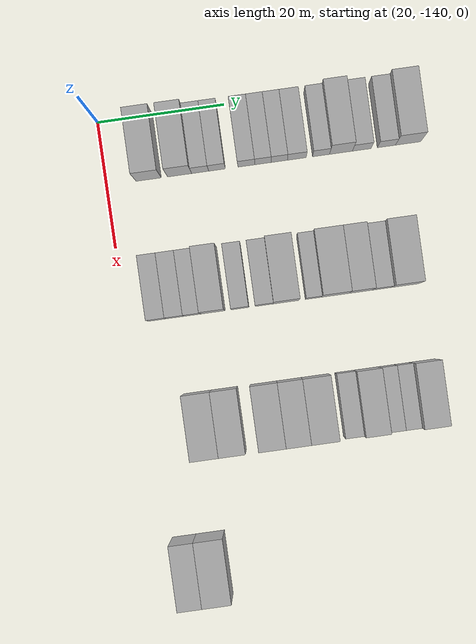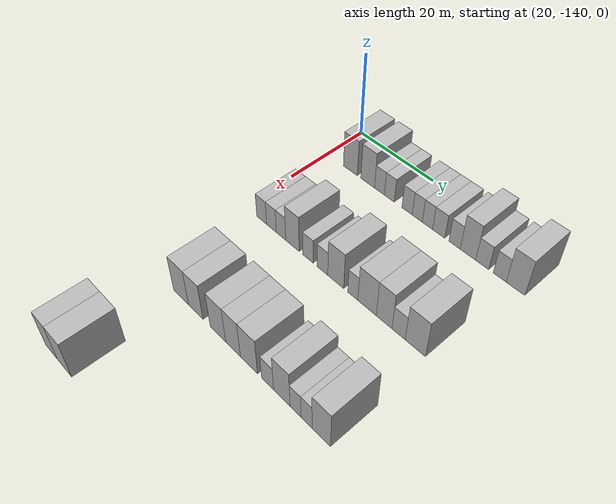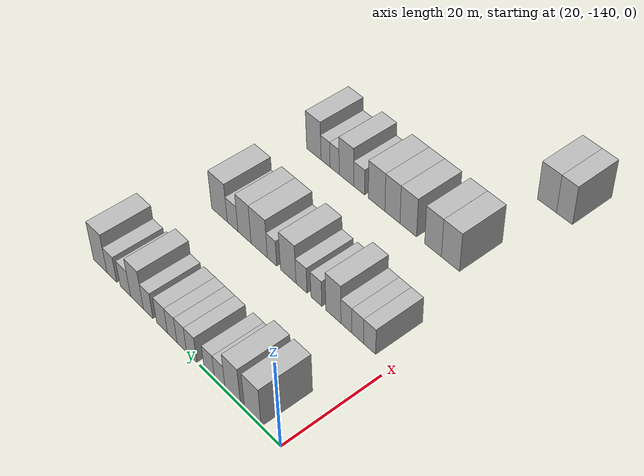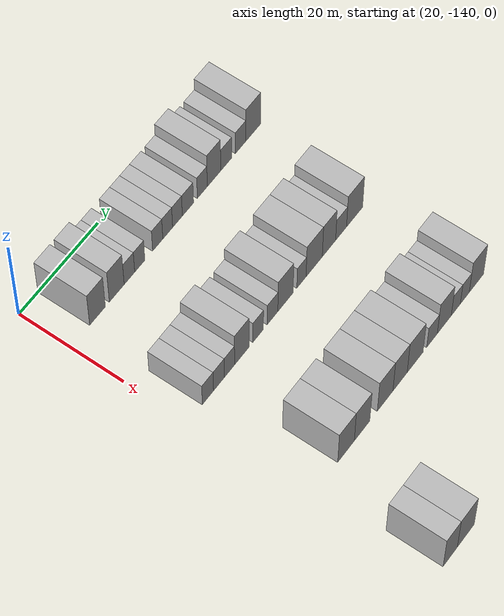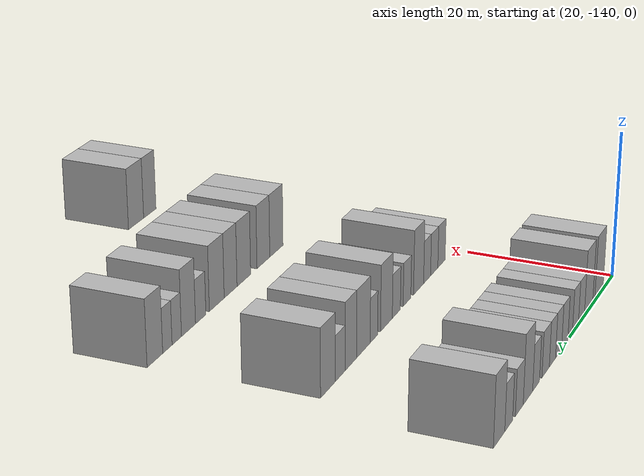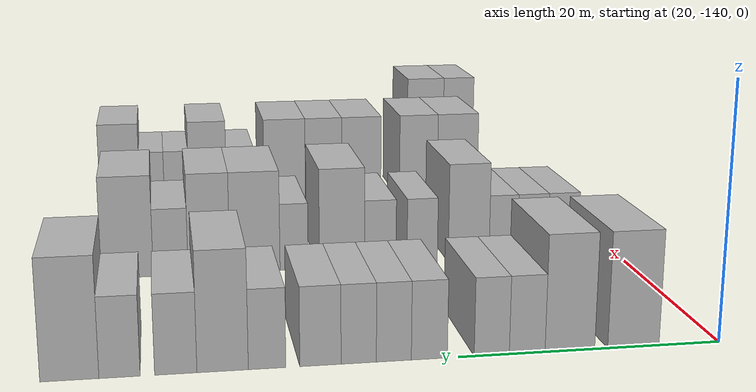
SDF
<sdf version="1.6">
 <world name="default">
  <model name="building_61">
   <static>1</static>
   <pose>25.0000 -133.2945 0 0.000000 0.000000 0.000000</pose>
   <link name="link">
    <pose>0 0 4.50 0 0 0</pose>
    <collision name="collision"><geometry><box><size>10.0000 3.9825 9.0000</size></box></geometry></collision>
    <visual name="visual">
     <cast_shadows>0</cast_shadows>
     <geometry><box><size>10.0000 3.9825 9.0000</size></box></geometry>
     <material>
      <script>
       <uri>model://HANNAS_wall/materials/scripts</uri>
       <uri>model://HANNAS_wall/materials/textures</uri>
       <name>vrc/HANNAS_wall</name>
      </script>
     </material>
    </visual>
   </link>
  </model>
  <model name="building_62">
   <static>1</static>
   <pose>25.0000 -128.4041 0 0.000000 0.000000 0.000000</pose>
   <link name="link">
    <pose>0 0 4.50 0 0 0</pose>
    <collision name="collision"><geometry><box><size>10.0000 3.7982 9.0000</size></box></geometry></collision>
    <visual name="visual">
     <cast_shadows>0</cast_shadows>
     <geometry><box><size>10.0000 3.7982 9.0000</size></box></geometry>
     <material>
      <script>
       <uri>model://HANNAS_wall/materials/scripts</uri>
       <uri>model://HANNAS_wall/materials/textures</uri>
       <name>vrc/HANNAS_wall</name>
      </script>
     </material>
    </visual>
   </link>
  </model>
  <model name="building_63">
   <static>1</static>
   <pose>25.0000 -125.1528 0 0.000000 0.000000 0.000000</pose>
   <link name="link">
    <pose>0 0 3.00 0 0 0</pose>
    <collision name="collision"><geometry><box><size>10.0000 2.7044 6.0000</size></box></geometry></collision>
    <visual name="visual">
     <cast_shadows>0</cast_shadows>
     <geometry><box><size>10.0000 2.7044 6.0000</size></box></geometry>
     <material>
      <script>
       <uri>model://HANNAS_wall/materials/scripts</uri>
       <uri>model://HANNAS_wall/materials/textures</uri>
       <name>vrc/HANNAS_wall</name>
      </script>
     </material>
    </visual>
   </link>
  </model>
  <model name="building_64">
   <static>1</static>
   <pose>25.0000 -122.4836 0 0.000000 0.000000 0.000000</pose>
   <link name="link">
    <pose>0 0 3.00 0 0 0</pose>
    <collision name="collision"><geometry><box><size>10.0000 2.6340 6.0000</size></box></geometry></collision>
    <visual name="visual">
     <cast_shadows>0</cast_shadows>
     <geometry><box><size>10.0000 2.6340 6.0000</size></box></geometry>
     <material>
      <script>
       <uri>model://HANNAS_wall/materials/scripts</uri>
       <uri>model://HANNAS_wall/materials/textures</uri>
       <name>vrc/HANNAS_wall</name>
      </script>
     </material>
    </visual>
   </link>
  </model>
  <model name="building_65">
   <static>1</static>
   <pose>25.0000 -117.8355 0 0.000000 0.000000 0.000000</pose>
   <link name="link">
    <pose>0 0 3.00 0 0 0</pose>
    <collision name="collision"><geometry><box><size>10.0000 2.6623 6.0000</size></box></geometry></collision>
    <visual name="visual">
     <cast_shadows>0</cast_shadows>
     <geometry><box><size>10.0000 2.6623 6.0000</size></box></geometry>
     <material>
      <script>
       <uri>model://HANNAS_wall/materials/scripts</uri>
       <uri>model://HANNAS_wall/materials/textures</uri>
       <name>vrc/HANNAS_wall</name>
      </script>
     </material>
    </visual>
   </link>
  </model>
  <model name="building_66">
   <static>1</static>
   <pose>25.0000 -115.2223 0 0.000000 0.000000 0.000000</pose>
   <link name="link">
    <pose>0 0 3.00 0 0 0</pose>
    <collision name="collision"><geometry><box><size>10.0000 2.5640 6.0000</size></box></geometry></collision>
    <visual name="visual">
     <cast_shadows>0</cast_shadows>
     <geometry><box><size>10.0000 2.5640 6.0000</size></box></geometry>
     <material>
      <script>
       <uri>model://HANNAS_wall/materials/scripts</uri>
       <uri>model://HANNAS_wall/materials/textures</uri>
       <name>vrc/HANNAS_wall</name>
      </script>
     </material>
    </visual>
   </link>
  </model>
  <model name="building_67">
   <static>1</static>
   <pose>25.0000 -112.6563 0 0.000000 0.000000 0.000000</pose>
   <link name="link">
    <pose>0 0 3.00 0 0 0</pose>
    <collision name="collision"><geometry><box><size>10.0000 2.5680 6.0000</size></box></geometry></collision>
    <visual name="visual">
     <cast_shadows>0</cast_shadows>
     <geometry><box><size>10.0000 2.5680 6.0000</size></box></geometry>
     <material>
      <script>
       <uri>model://HANNAS_wall/materials/scripts</uri>
       <uri>model://HANNAS_wall/materials/textures</uri>
       <name>vrc/HANNAS_wall</name>
      </script>
     </material>
    </visual>
   </link>
  </model>
  <model name="building_68">
   <static>1</static>
   <pose>25.0000 -109.8868 0 0.000000 0.000000 0.000000</pose>
   <link name="link">
    <pose>0 0 3.00 0 0 0</pose>
    <collision name="collision"><geometry><box><size>10.0000 2.9711 6.0000</size></box></geometry></collision>
    <visual name="visual">
     <cast_shadows>0</cast_shadows>
     <geometry><box><size>10.0000 2.9711 6.0000</size></box></geometry>
     <material>
      <script>
       <uri>model://HANNAS_wall/materials/scripts</uri>
       <uri>model://HANNAS_wall/materials/textures</uri>
       <name>vrc/HANNAS_wall</name>
      </script>
     </material>
    </visual>
   </link>
  </model>
  <model name="building_69">
   <static>1</static>
   <pose>25.0000 -106.0646 0 0.000000 0.000000 0.000000</pose>
   <link name="link">
    <pose>0 0 3.00 0 0 0</pose>
    <collision name="collision"><geometry><box><size>10.0000 2.6733 6.0000</size></box></geometry></collision>
    <visual name="visual">
     <cast_shadows>0</cast_shadows>
     <geometry><box><size>10.0000 2.6733 6.0000</size></box></geometry>
     <material>
      <script>
       <uri>model://HANNAS_wall/materials/scripts</uri>
       <uri>model://HANNAS_wall/materials/textures</uri>
       <name>vrc/HANNAS_wall</name>
      </script>
     </material>
    </visual>
   </link>
  </model>
  <model name="building_70">
   <static>1</static>
   <pose>25.0000 -102.9174 0 0.000000 0.000000 0.000000</pose>
   <link name="link">
    <pose>0 0 4.50 0 0 0</pose>
    <collision name="collision"><geometry><box><size>10.0000 3.6209 9.0000</size></box></geometry></collision>
    <visual name="visual">
     <cast_shadows>0</cast_shadows>
     <geometry><box><size>10.0000 3.6209 9.0000</size></box></geometry>
     <material>
      <script>
       <uri>model://HANNAS_wall/materials/scripts</uri>
       <uri>model://HANNAS_wall/materials/textures</uri>
       <name>vrc/HANNAS_wall</name>
      </script>
     </material>
    </visual>
   </link>
  </model>
  <model name="building_71">
   <static>1</static>
   <pose>25.0000 -99.6323 0 0.000000 0.000000 0.000000</pose>
   <link name="link">
    <pose>0 0 3.00 0 0 0</pose>
    <collision name="collision"><geometry><box><size>10.0000 2.9495 6.0000</size></box></geometry></collision>
    <visual name="visual">
     <cast_shadows>0</cast_shadows>
     <geometry><box><size>10.0000 2.9495 6.0000</size></box></geometry>
     <material>
      <script>
       <uri>model://HANNAS_wall/materials/scripts</uri>
       <uri>model://HANNAS_wall/materials/textures</uri>
       <name>vrc/HANNAS_wall</name>
      </script>
     </material>
    </visual>
   </link>
  </model>
  <model name="building_72">
   <static>1</static>
   <pose>25.0000 -95.7354 0 0.000000 0.000000 0.000000</pose>
   <link name="link">
    <pose>0 0 3.00 0 0 0</pose>
    <collision name="collision"><geometry><box><size>10.0000 2.8443 6.0000</size></box></geometry></collision>
    <visual name="visual">
     <cast_shadows>0</cast_shadows>
     <geometry><box><size>10.0000 2.8443 6.0000</size></box></geometry>
     <material>
      <script>
       <uri>model://HANNAS_wall/materials/scripts</uri>
       <uri>model://HANNAS_wall/materials/textures</uri>
       <name>vrc/HANNAS_wall</name>
      </script>
     </material>
    </visual>
   </link>
  </model>
  <model name="building_73">
   <static>1</static>
   <pose>25.0000 -92.3011 0 0.000000 0.000000 0.000000</pose>
   <link name="link">
    <pose>0 0 4.50 0 0 0</pose>
    <collision name="collision"><geometry><box><size>10.0000 4.0243 9.0000</size></box></geometry></collision>
    <visual name="visual">
     <cast_shadows>0</cast_shadows>
     <geometry><box><size>10.0000 4.0243 9.0000</size></box></geometry>
     <material>
      <script>
       <uri>model://HANNAS_wall/materials/scripts</uri>
       <uri>model://HANNAS_wall/materials/textures</uri>
       <name>vrc/HANNAS_wall</name>
      </script>
     </material>
    </visual>
   </link>
  </model>
  <model name="building_256">
   <static>1</static>
   <pose>47.0000 -134.8797 0 0.000000 0.000000 0.000000</pose>
   <link name="link">
    <pose>0 0 3.00 0 0 0</pose>
    <collision name="collision"><geometry><box><size>10.0000 2.8707 6.0000</size></box></geometry></collision>
    <visual name="visual">
     <cast_shadows>0</cast_shadows>
     <geometry><box><size>10.0000 2.8707 6.0000</size></box></geometry>
     <material>
      <script>
       <uri>model://HANNAS_wall/materials/scripts</uri>
       <uri>model://HANNAS_wall/materials/textures</uri>
       <name>vrc/HANNAS_wall</name>
      </script>
     </material>
    </visual>
   </link>
  </model>
  <model name="building_257">
   <static>1</static>
   <pose>47.0000 -132.0380 0 0.000000 0.000000 0.000000</pose>
   <link name="link">
    <pose>0 0 3.00 0 0 0</pose>
    <collision name="collision"><geometry><box><size>10.0000 2.8127 6.0000</size></box></geometry></collision>
    <visual name="visual">
     <cast_shadows>0</cast_shadows>
     <geometry><box><size>10.0000 2.8127 6.0000</size></box></geometry>
     <material>
      <script>
       <uri>model://HANNAS_wall/materials/scripts</uri>
       <uri>model://HANNAS_wall/materials/textures</uri>
       <name>vrc/HANNAS_wall</name>
      </script>
     </material>
    </visual>
   </link>
  </model>
  <model name="building_258">
   <static>1</static>
   <pose>47.0000 -129.3125 0 0.000000 0.000000 0.000000</pose>
   <link name="link">
    <pose>0 0 3.00 0 0 0</pose>
    <collision name="collision"><geometry><box><size>10.0000 2.6383 6.0000</size></box></geometry></collision>
    <visual name="visual">
     <cast_shadows>0</cast_shadows>
     <geometry><box><size>10.0000 2.6383 6.0000</size></box></geometry>
     <material>
      <script>
       <uri>model://HANNAS_wall/materials/scripts</uri>
       <uri>model://HANNAS_wall/materials/textures</uri>
       <name>vrc/HANNAS_wall</name>
      </script>
     </material>
    </visual>
   </link>
  </model>
  <model name="building_259">
   <static>1</static>
   <pose>47.0000 -126.1210 0 0.000000 0.000000 0.000000</pose>
   <link name="link">
    <pose>0 0 4.50 0 0 0</pose>
    <collision name="collision"><geometry><box><size>10.0000 3.7447 9.0000</size></box></geometry></collision>
    <visual name="visual">
     <cast_shadows>0</cast_shadows>
     <geometry><box><size>10.0000 3.7447 9.0000</size></box></geometry>
     <material>
      <script>
       <uri>model://HANNAS_wall/materials/scripts</uri>
       <uri>model://HANNAS_wall/materials/textures</uri>
       <name>vrc/HANNAS_wall</name>
      </script>
     </material>
    </visual>
   </link>
  </model>
  <model name="building_260">
   <static>1</static>
   <pose>47.0000 -121.8693 0 0.000000 0.000000 0.000000</pose>
   <link name="link">
    <pose>0 0 3.00 0 0 0</pose>
    <collision name="collision"><geometry><box><size>10.0000 2.7587 6.0000</size></box></geometry></collision>
    <visual name="visual">
     <cast_shadows>0</cast_shadows>
     <geometry><box><size>10.0000 2.7587 6.0000</size></box></geometry>
     <material>
      <script>
       <uri>model://HANNAS_wall/materials/scripts</uri>
       <uri>model://HANNAS_wall/materials/textures</uri>
       <name>vrc/HANNAS_wall</name>
      </script>
     </material>
    </visual>
   </link>
  </model>
  <model name="building_261">
   <static>1</static>
   <pose>47.0000 -118.0780 0 0.000000 0.000000 0.000000</pose>
   <link name="link">
    <pose>0 0 3.00 0 0 0</pose>
    <collision name="collision"><geometry><box><size>10.0000 2.8239 6.0000</size></box></geometry></collision>
    <visual name="visual">
     <cast_shadows>0</cast_shadows>
     <geometry><box><size>10.0000 2.8239 6.0000</size></box></geometry>
     <material>
      <script>
       <uri>model://HANNAS_wall/materials/scripts</uri>
       <uri>model://HANNAS_wall/materials/textures</uri>
       <name>vrc/HANNAS_wall</name>
      </script>
     </material>
    </visual>
   </link>
  </model>
  <model name="building_262">
   <static>1</static>
   <pose>47.0000 -114.6399 0 0.000000 0.000000 0.000000</pose>
   <link name="link">
    <pose>0 0 4.50 0 0 0</pose>
    <collision name="collision"><geometry><box><size>10.0000 4.0524 9.0000</size></box></geometry></collision>
    <visual name="visual">
     <cast_shadows>0</cast_shadows>
     <geometry><box><size>10.0000 4.0524 9.0000</size></box></geometry>
     <material>
      <script>
       <uri>model://HANNAS_wall/materials/scripts</uri>
       <uri>model://HANNAS_wall/materials/textures</uri>
       <name>vrc/HANNAS_wall</name>
      </script>
     </material>
    </visual>
   </link>
  </model>
  <model name="building_263">
   <static>1</static>
   <pose>47.0000 -110.3734 0 0.000000 0.000000 0.000000</pose>
   <link name="link">
    <pose>0 0 3.00 0 0 0</pose>
    <collision name="collision"><geometry><box><size>10.0000 2.4806 6.0000</size></box></geometry></collision>
    <visual name="visual">
     <cast_shadows>0</cast_shadows>
     <geometry><box><size>10.0000 2.4806 6.0000</size></box></geometry>
     <material>
      <script>
       <uri>model://HANNAS_wall/materials/scripts</uri>
       <uri>model://HANNAS_wall/materials/textures</uri>
       <name>vrc/HANNAS_wall</name>
      </script>
     </material>
    </visual>
   </link>
  </model>
  <model name="building_264">
   <static>1</static>
   <pose>47.0000 -106.9360 0 0.000000 0.000000 0.000000</pose>
   <link name="link">
    <pose>0 0 4.50 0 0 0</pose>
    <collision name="collision"><geometry><box><size>10.0000 4.3941 9.0000</size></box></geometry></collision>
    <visual name="visual">
     <cast_shadows>0</cast_shadows>
     <geometry><box><size>10.0000 4.3941 9.0000</size></box></geometry>
     <material>
      <script>
       <uri>model://HANNAS_wall/materials/scripts</uri>
       <uri>model://HANNAS_wall/materials/textures</uri>
       <name>vrc/HANNAS_wall</name>
      </script>
     </material>
    </visual>
   </link>
  </model>
  <model name="building_265">
   <static>1</static>
   <pose>47.0000 -102.9288 0 0.000000 0.000000 0.000000</pose>
   <link name="link">
    <pose>0 0 4.50 0 0 0</pose>
    <collision name="collision"><geometry><box><size>10.0000 3.6204 9.0000</size></box></geometry></collision>
    <visual name="visual">
     <cast_shadows>0</cast_shadows>
     <geometry><box><size>10.0000 3.6204 9.0000</size></box></geometry>
     <material>
      <script>
       <uri>model://HANNAS_wall/materials/scripts</uri>
       <uri>model://HANNAS_wall/materials/textures</uri>
       <name>vrc/HANNAS_wall</name>
      </script>
     </material>
    </visual>
   </link>
  </model>
  <model name="building_266">
   <static>1</static>
   <pose>47.0000 -99.6198 0 0.000000 0.000000 0.000000</pose>
   <link name="link">
    <pose>0 0 3.00 0 0 0</pose>
    <collision name="collision"><geometry><box><size>10.0000 2.9974 6.0000</size></box></geometry></collision>
    <visual name="visual">
     <cast_shadows>0</cast_shadows>
     <geometry><box><size>10.0000 2.9974 6.0000</size></box></geometry>
     <material>
      <script>
       <uri>model://HANNAS_wall/materials/scripts</uri>
       <uri>model://HANNAS_wall/materials/textures</uri>
       <name>vrc/HANNAS_wall</name>
      </script>
     </material>
    </visual>
   </link>
  </model>
  <model name="building_267">
   <static>1</static>
   <pose>47.0000 -95.9045 0 0.000000 0.000000 0.000000</pose>
   <link name="link">
    <pose>0 0 4.50 0 0 0</pose>
    <collision name="collision"><geometry><box><size>10.0000 4.4332 9.0000</size></box></geometry></collision>
    <visual name="visual">
     <cast_shadows>0</cast_shadows>
     <geometry><box><size>10.0000 4.4332 9.0000</size></box></geometry>
     <material>
      <script>
       <uri>model://HANNAS_wall/materials/scripts</uri>
       <uri>model://HANNAS_wall/materials/textures</uri>
       <name>vrc/HANNAS_wall</name>
      </script>
     </material>
    </visual>
   </link>
  </model>
  <model name="building_443">
   <static>1</static>
   <pose>69.0000 -130.2370 0 0.000000 0.000000 0.000000</pose>
   <link name="link">
    <pose>0 0 4.50 0 0 0</pose>
    <collision name="collision"><geometry><box><size>10.0000 4.3600 9.0000</size></box></geometry></collision>
    <visual name="visual">
     <cast_shadows>0</cast_shadows>
     <geometry><box><size>10.0000 4.3600 9.0000</size></box></geometry>
     <material>
      <script>
       <uri>model://HANNAS_wall/materials/scripts</uri>
       <uri>model://HANNAS_wall/materials/textures</uri>
       <name>vrc/HANNAS_wall</name>
      </script>
     </material>
    </visual>
   </link>
  </model>
  <model name="building_444">
   <static>1</static>
   <pose>69.0000 -126.0139 0 0.000000 0.000000 0.000000</pose>
   <link name="link">
    <pose>0 0 4.50 0 0 0</pose>
    <collision name="collision"><geometry><box><size>10.0000 4.0861 9.0000</size></box></geometry></collision>
    <visual name="visual">
     <cast_shadows>0</cast_shadows>
     <geometry><box><size>10.0000 4.0861 9.0000</size></box></geometry>
     <material>
      <script>
       <uri>model://HANNAS_wall/materials/scripts</uri>
       <uri>model://HANNAS_wall/materials/textures</uri>
       <name>vrc/HANNAS_wall</name>
      </script>
     </material>
    </visual>
   </link>
  </model>
  <model name="building_445">
   <static>1</static>
   <pose>69.0000 -119.8840 0 0.000000 0.000000 0.000000</pose>
   <link name="link">
    <pose>0 0 4.50 0 0 0</pose>
    <collision name="collision"><geometry><box><size>10.0000 4.1737 9.0000</size></box></geometry></collision>
    <visual name="visual">
     <cast_shadows>0</cast_shadows>
     <geometry><box><size>10.0000 4.1737 9.0000</size></box></geometry>
     <material>
      <script>
       <uri>model://HANNAS_wall/materials/scripts</uri>
       <uri>model://HANNAS_wall/materials/textures</uri>
       <name>vrc/HANNAS_wall</name>
      </script>
     </material>
    </visual>
   </link>
  </model>
  <model name="building_446">
   <static>1</static>
   <pose>69.0000 -115.8743 0 0.000000 0.000000 0.000000</pose>
   <link name="link">
    <pose>0 0 4.50 0 0 0</pose>
    <collision name="collision"><geometry><box><size>10.0000 3.8456 9.0000</size></box></geometry></collision>
    <visual name="visual">
     <cast_shadows>0</cast_shadows>
     <geometry><box><size>10.0000 3.8456 9.0000</size></box></geometry>
     <material>
      <script>
       <uri>model://HANNAS_wall/materials/scripts</uri>
       <uri>model://HANNAS_wall/materials/textures</uri>
       <name>vrc/HANNAS_wall</name>
      </script>
     </material>
    </visual>
   </link>
  </model>
  <model name="building_447">
   <static>1</static>
   <pose>69.0000 -111.7937 0 0.000000 0.000000 0.000000</pose>
   <link name="link">
    <pose>0 0 4.50 0 0 0</pose>
    <collision name="collision"><geometry><box><size>10.0000 4.3155 9.0000</size></box></geometry></collision>
    <visual name="visual">
     <cast_shadows>0</cast_shadows>
     <geometry><box><size>10.0000 4.3155 9.0000</size></box></geometry>
     <material>
      <script>
       <uri>model://HANNAS_wall/materials/scripts</uri>
       <uri>model://HANNAS_wall/materials/textures</uri>
       <name>vrc/HANNAS_wall</name>
      </script>
     </material>
    </visual>
   </link>
  </model>
  <model name="building_448">
   <static>1</static>
   <pose>69.0000 -107.1810 0 0.000000 0.000000 0.000000</pose>
   <link name="link">
    <pose>0 0 3.00 0 0 0</pose>
    <collision name="collision"><geometry><box><size>10.0000 2.9099 6.0000</size></box></geometry></collision>
    <visual name="visual">
     <cast_shadows>0</cast_shadows>
     <geometry><box><size>10.0000 2.9099 6.0000</size></box></geometry>
     <material>
      <script>
       <uri>model://HANNAS_wall/materials/scripts</uri>
       <uri>model://HANNAS_wall/materials/textures</uri>
       <name>vrc/HANNAS_wall</name>
      </script>
     </material>
    </visual>
   </link>
  </model>
  <model name="building_449">
   <static>1</static>
   <pose>69.0000 -103.7923 0 0.000000 0.000000 0.000000</pose>
   <link name="link">
    <pose>0 0 4.50 0 0 0</pose>
    <collision name="collision"><geometry><box><size>10.0000 3.8675 9.0000</size></box></geometry></collision>
    <visual name="visual">
     <cast_shadows>0</cast_shadows>
     <geometry><box><size>10.0000 3.8675 9.0000</size></box></geometry>
     <material>
      <script>
       <uri>model://HANNAS_wall/materials/scripts</uri>
       <uri>model://HANNAS_wall/materials/textures</uri>
       <name>vrc/HANNAS_wall</name>
      </script>
     </material>
    </visual>
   </link>
  </model>
  <model name="building_450">
   <static>1</static>
   <pose>69.0000 -100.5979 0 0.000000 0.000000 0.000000</pose>
   <link name="link">
    <pose>0 0 3.00 0 0 0</pose>
    <collision name="collision"><geometry><box><size>10.0000 2.5214 6.0000</size></box></geometry></collision>
    <visual name="visual">
     <cast_shadows>0</cast_shadows>
     <geometry><box><size>10.0000 2.5214 6.0000</size></box></geometry>
     <material>
      <script>
       <uri>model://HANNAS_wall/materials/scripts</uri>
       <uri>model://HANNAS_wall/materials/textures</uri>
       <name>vrc/HANNAS_wall</name>
      </script>
     </material>
    </visual>
   </link>
  </model>
  <model name="building_451">
   <static>1</static>
   <pose>69.0000 -98.1019 0 0.000000 0.000000 0.000000</pose>
   <link name="link">
    <pose>0 0 3.00 0 0 0</pose>
    <collision name="collision"><geometry><box><size>10.0000 2.4706 6.0000</size></box></geometry></collision>
    <visual name="visual">
     <cast_shadows>0</cast_shadows>
     <geometry><box><size>10.0000 2.4706 6.0000</size></box></geometry>
     <material>
      <script>
       <uri>model://HANNAS_wall/materials/scripts</uri>
       <uri>model://HANNAS_wall/materials/textures</uri>
       <name>vrc/HANNAS_wall</name>
      </script>
     </material>
    </visual>
   </link>
  </model>
  <model name="building_452">
   <static>1</static>
   <pose>69.0000 -94.8513 0 0.000000 0.000000 0.000000</pose>
   <link name="link">
    <pose>0 0 4.50 0 0 0</pose>
    <collision name="collision"><geometry><box><size>10.0000 4.0306 9.0000</size></box></geometry></collision>
    <visual name="visual">
     <cast_shadows>0</cast_shadows>
     <geometry><box><size>10.0000 4.0306 9.0000</size></box></geometry>
     <material>
      <script>
       <uri>model://HANNAS_wall/materials/scripts</uri>
       <uri>model://HANNAS_wall/materials/textures</uri>
       <name>vrc/HANNAS_wall</name>
      </script>
     </material>
    </visual>
   </link>
  </model>
  <model name="building_629">
   <static>1</static>
   <pose>91.0000 -135.4930 0 0.000000 0.000000 0.000000</pose>
   <link name="link">
    <pose>0 0 4.50 0 0 0</pose>
    <collision name="collision"><geometry><box><size>10.0000 3.7478 9.0000</size></box></geometry></collision>
    <visual name="visual">
     <cast_shadows>0</cast_shadows>
     <geometry><box><size>10.0000 3.7478 9.0000</size></box></geometry>
     <material>
      <script>
       <uri>model://HANNAS_wall/materials/scripts</uri>
       <uri>model://HANNAS_wall/materials/textures</uri>
       <name>vrc/HANNAS_wall</name>
      </script>
     </material>
    </visual>
   </link>
  </model>
  <model name="building_630">
   <static>1</static>
   <pose>91.0000 -131.3754 0 0.000000 0.000000 0.000000</pose>
   <link name="link">
    <pose>0 0 4.50 0 0 0</pose>
    <collision name="collision"><geometry><box><size>10.0000 4.4874 9.0000</size></box></geometry></collision>
    <visual name="visual">
     <cast_shadows>0</cast_shadows>
     <geometry><box><size>10.0000 4.4874 9.0000</size></box></geometry>
     <material>
      <script>
       <uri>model://HANNAS_wall/materials/scripts</uri>
       <uri>model://HANNAS_wall/materials/textures</uri>
       <name>vrc/HANNAS_wall</name>
      </script>
     </material>
    </visual>
   </link>
  </model>
 </world>
</sdf>
